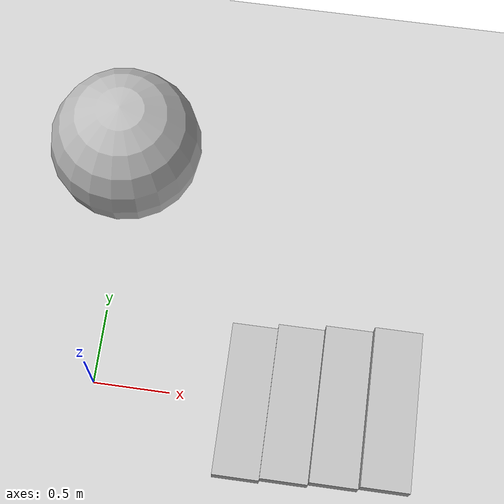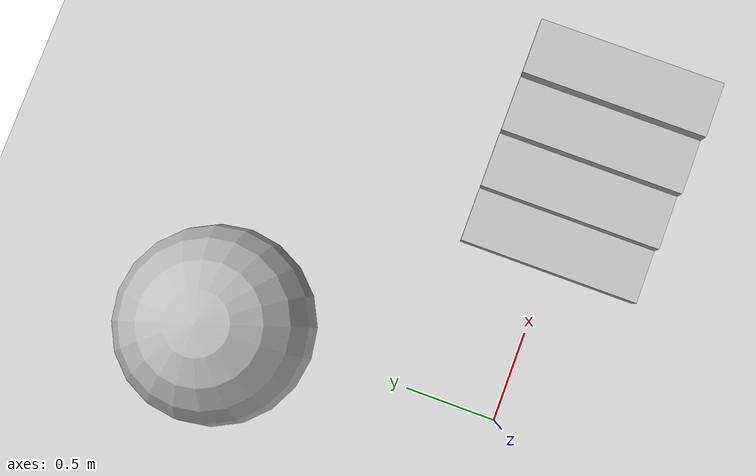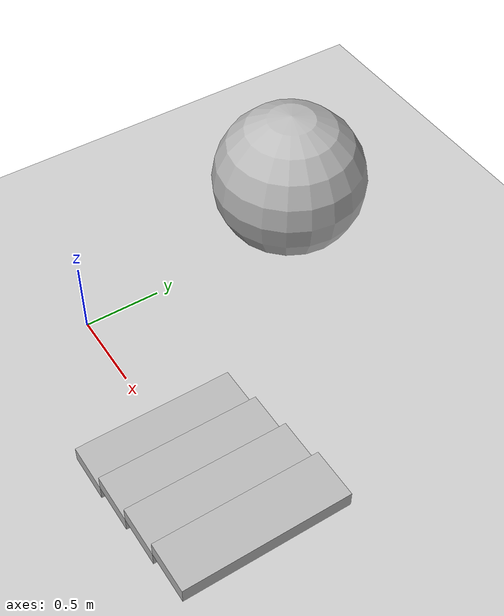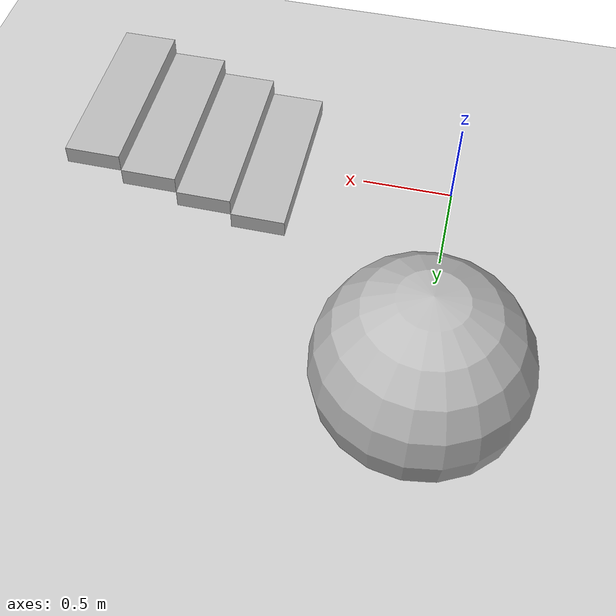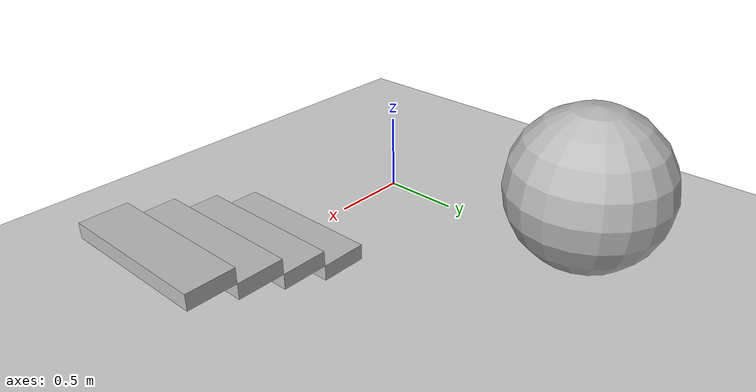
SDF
<?xml version="1.0"?>
<sdf version="1.5">
  <world name="default">
    <gui fullscreen='0'>
      <camera name='user_default'>
        <pose frame=''>0.602948 -0.001582 0.357965 -0 0.6 -3.141</pose>
        <view_controller>orbit</view_controller>
        <projection_type>perspective</projection_type>
      </camera>
    </gui>

    <include>
      <uri>model://ground_plane</uri>
    </include>

    <include>
      <uri>model://sun</uri>
    </include>

    <model name="stairs">
      <pose>1 0 0 0 0 0</pose>
      <static>true</static>
      <link name="step1">
        <pose>0 0 0.05 0 0 0</pose>
        <collision name="collision">
          <geometry>
            <box> <size>0.3 1.0 0.1</size> </box>
          </geometry>
        </collision>
        <visual name="visual">
          <geometry>
            <box> <size>0.3 1.0 0.1</size> </box>
          </geometry>
        </visual>
      </link>
      <link name="step2">
        <pose>0.3 0 0.15 0 0 0</pose>
        <collision name="collision">
          <geometry>
            <box> <size>0.3 1.0 0.1</size> </box>
          </geometry>
        </collision>
        <visual name="visual">
          <geometry>
            <box> <size>0.3 1.0 0.1</size> </box>
          </geometry>
        </visual>
      </link>
      <link name="step3">
        <pose>0.6 0 0.25 0 0 0</pose>
        <collision name="collision">
          <geometry>
            <box> <size>0.3 1.0 0.1</size> </box>
          </geometry>
        </collision>
        <visual name="visual">
          <geometry>
            <box> <size>0.3 1.0 0.1</size> </box>
          </geometry>
        </visual>
      </link>
      <link name="step4">
        <pose>0.9 0 0.35 0 0 0</pose>
        <collision name="collision">
          <geometry>
            <box> <size>0.3 1.0 0.1</size> </box>
          </geometry>
        </collision>
        <visual name="visual">
          <geometry>
            <box> <size>0.3 1.0 0.1</size> </box>
          </geometry>
        </visual>
      </link>
    </model>

    <model name="sphere">
      <pose>0 1.5 0.5 0 0 0</pose>
      <link name="link">
        <collision name="collision">
          <geometry>
            <sphere>
              <radius>0.5</radius>
            </sphere>
          </geometry>
        </collision>
        <visual name="visual">
          <geometry>
            <sphere>
              <radius>0.5</radius>
            </sphere>
          </geometry>
          <material>
            <script>Gazebo/WoodPallet</script>
          </material>
        </visual>
        <audio_source>
          <uri>file://media/audio/cheer.wav</uri>
          <pitch>2.0</pitch>
          <gain>1.0</gain>
          <loop>false</loop>
          <contact>
            <collision>collision</collision>
          </contact>
        </audio_source>
      </link>
    </model>
  </world>
</sdf>
